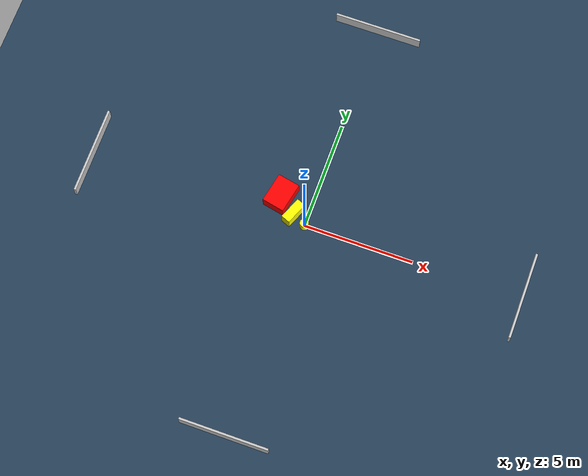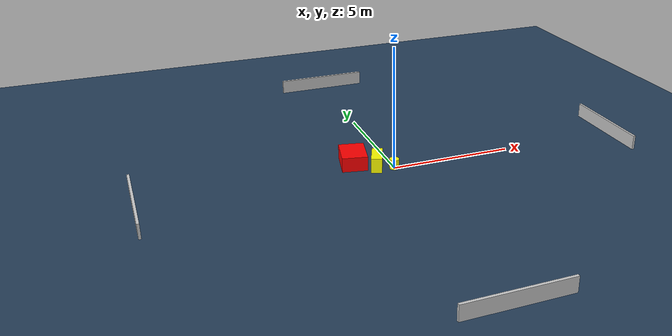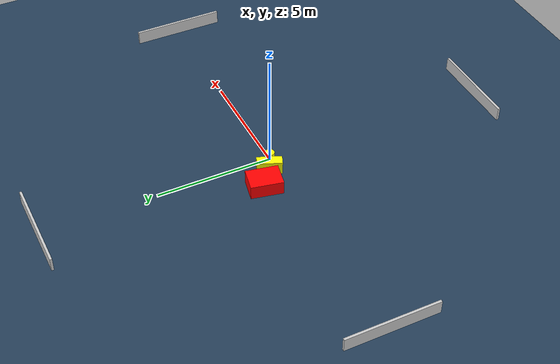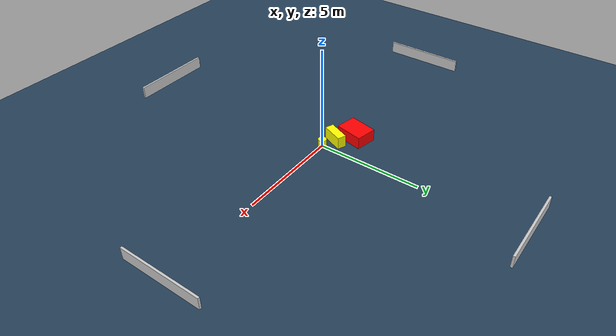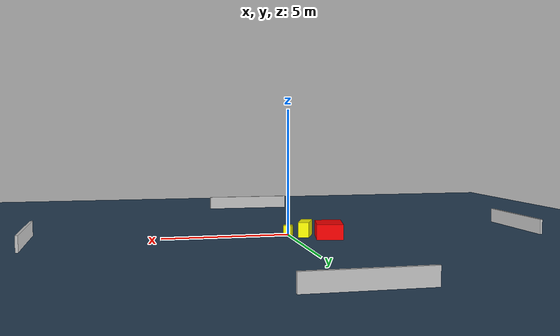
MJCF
<?xml version="1.0" ?>
<mujoco model="generated_environment">
  <option timestep="0.01" integrator="RK4" cone="elliptic"/>
  <default>
    <geom density="1"/>
  </default>
  <asset>
    <texture builtin="gradient" height="3072" name="skybox" rgb1="0.3 0.5 0.7" rgb2="0 0 0" type="skybox" width="512"/>
    <texture builtin="checker" height="300" name="groundplane" rgb1="0.2 0.3 0.4" rgb2="0.1 0.2 0.3" type="2d" width="300"/>
    <material name="groundplane" reflectance="0.2" texrepeat="5 5" texture="groundplane"/>
  </asset>
  <worldbody>
    <light dir="0 0 -1" directional="true" pos="0 0 1.5"/>
    <geom condim="3" friction="0.5 0.005 0.001" material="groundplane" name="floor" pos="0 0 0" size="0 0 0.05" type="plane"/>
    <body name="walls">
      <geom name="wall_1" condim="4" pos="-10.0 0.0 0.3" rgba="0.800000011920929 0.800000011920929 0.800000011920929 1.0" size="0.05 2.0 0.3" type="box"/>
      <geom name="wall_2" condim="4" pos="10.0 0.0 0.3" rgba="0.800000011920929 0.800000011920929 0.800000011920929 1.0" size="0.05 2.0 0.3" type="box"/>
      <geom name="wall_3" condim="4" pos="0.0 -10.0 0.3" rgba="0.800000011920929 0.800000011920929 0.800000011920929 1.0" size="2.0 0.05 0.3" type="box"/>
      <geom name="wall_4" condim="4" pos="0.0 10.0 0.3" rgba="0.800000011920929 0.800000011920929 0.800000011920929 1.0" size="2.0 0.05 0.3" type="box"/>
    </body>
    <body name="robot">
      <joint name="joint_x" type="slide" pos="0 0 0" axis="1 0 0"/>
      <joint name="joint_y" type="slide" pos="0 0 0" axis="0 1 0"/>
      <geom name="robot" type="cylinder" pos="0.0 0.0 0.2" size="0.2 0.2 0.0" mass="5.0" friction="1.0 0.005 0.0001" condim="4" rgba="1.0 1.0 0.0 1.0"/>
    </body>
    <body name="obstacle_1_movable">
      <geom name="obstacle_1_movable" condim="4" pos="-0.621140390624323 0.31642269410919605 0.3" euler="0 0 68.02686091108431" friction="0.0 0.005 0.001" rgba="1.0 1.0 0.0 1.0" size="0.5318764249974071 0.2134651457322495 0.3" type="box" mass="0.1"/>
      <joint type="free"/>
    </body>
    <body name="obstacle_2_static">
      <geom name="obstacle_2_static" condim="4" pos="-1.4225979665844124 0.9290882808707437 0.3" euler="0 0 348.35415452077535" friction="0.0 0.005 0.001" rgba="1.0 0.0 0.0 1.0" size="0.5143955638275057 0.6888220424228223 0.3" type="box"/>
    </body>
  </worldbody>
  <actuator>
    <motor name="actuator_x" joint="joint_x" gear="1" ctrlrange="-1 1"/>
    <motor name="actuator_y" joint="joint_y" gear="1" ctrlrange="-1 1"/>
  </actuator>
</mujoco>
